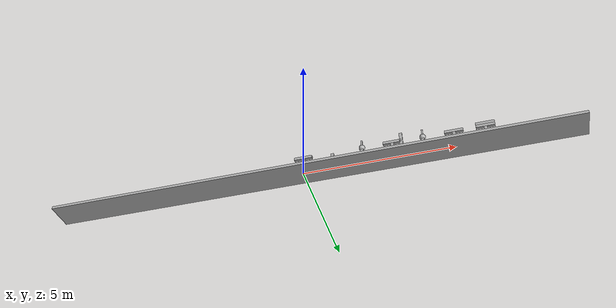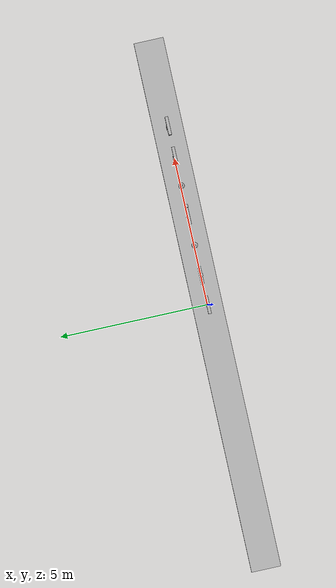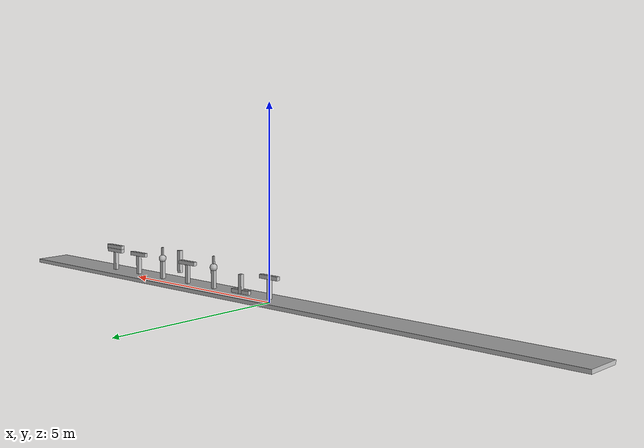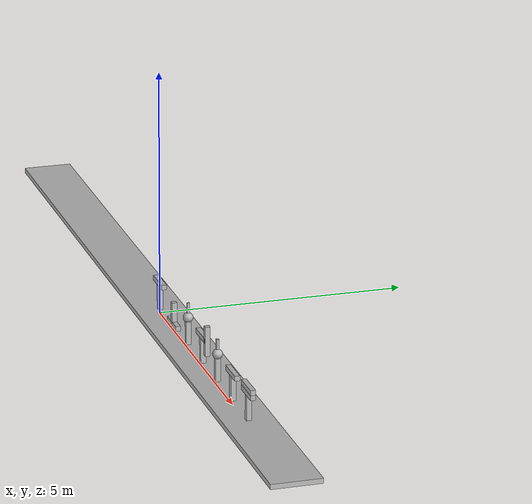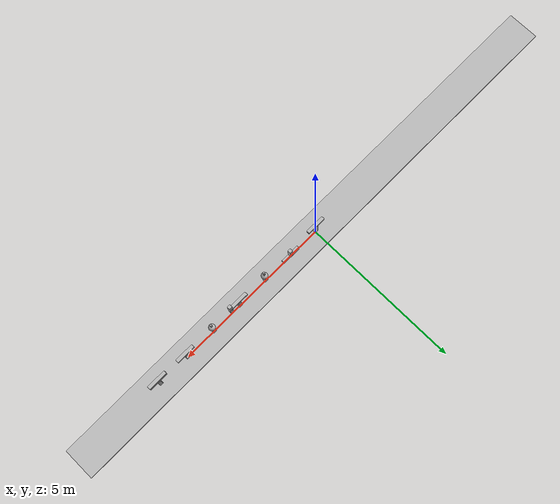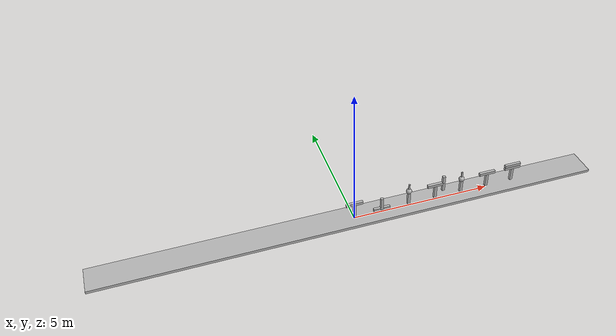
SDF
<?xml version="1.0" ?>
<sdf version="1.6">
  <model name="SimBox">
    <static>false</static>

<!-- base -->
    <link name="base">
      <pose>0 0 0.05 0 0 0</pose>

      <collision name="collision">
        <geometry>
          <box>
            <size>14 1 0.1</size>
          </box>
        </geometry>
      </collision>
      <visual name="visual">
        <geometry>
          <box>
            <size>18 1 0.1</size>
          </box>
        </geometry>
      </visual>
    </link>

<!-- revolute -->

    <link name="base_link_1_revolute">
      <pose>0 0 0.3 0 0 0</pose>

      <collision name="collision">
        <geometry>
          <box>
            <size>0.1 0.1 0.6</size>
          </box>
        </geometry>
      </collision>
      <visual name="visual">
        <geometry>
          <box>
            <size>0.1 0.1 0.6</size>
          </box>
        </geometry>
      </visual>
    </link>

    <link name="top_link_1_revolute">
      <pose>0 0 0.65 0 0 0</pose>

      <collision name="collision">
        <geometry>
          <box>
            <size>0.6 0.1 0.1</size>
          </box>
        </geometry>
      </collision>
      <visual name="visual">
        <geometry>
          <box>
            <size>0.6 0.1 0.1</size>
          </box>
        </geometry>
      </visual>
    </link>

     <joint name = "base_fixed_1" type="fixed">
      <parent>base</parent>
      <child>base_link_1_revolute</child>
    </joint>

    <joint name = "joint_1_revolute" type="revolute">
      <parent>base_link_1_revolute</parent>
      <child>top_link_1_revolute</child>
      <axis>
        <xyz>0 0 1</xyz>
      </axis>
    </joint>

    <!-- prismatic box -->

    <link name="base_link_2_prismatic">
      <pose>1 0 0.3 0 0 0</pose>

      <collision name="collision">
        <geometry>
          <box>
            <size>0.1 0.1 0.6</size>
          </box>
        </geometry>
      </collision>
      <visual name="visual">
        <geometry>
          <box>
            <size>0.1 0.1 0.6</size>
          </box>
        </geometry>
      </visual>
    </link>

    <link name="link_2_prismatic">
      <pose>1 0 0.15 0 0 0</pose>

      <collision name="collision">
        <geometry>
          <box>
            <size>0.6 0.1 0.1</size>
          </box>
        </geometry>
      </collision>
      <visual name="visual">
        <geometry>
          <box>
            <size>0.6 0.1 0.1</size>
          </box>
        </geometry>
      </visual>
    </link>

    <joint name = "base_fixed_2" type="fixed">
      <parent>base</parent>
      <child>base_link_2_prismatic</child>
    </joint>

    <joint name = "joint_2_prismatic" type="prismatic">
      <parent>base_link_2_prismatic</parent>
      <child>link_2_prismatic</child>
      <axis>
        <limit>
          <lower>0</lower>
          <upper>0.5</upper>
        </limit>
        <xyz>0 0 1</xyz>

      </axis>

    </joint>

        <!-- ball joint box -->

    <link name="base_link_3_ball">
      <pose>2 0 0.3 0 0 0</pose>

      <collision name="collision">
        <geometry>
          <box>
            <size>0.1 0.1 0.6</size>
          </box>
        </geometry>
      </collision>
      <visual name="visual">
        <geometry>
          <box>
            <size>0.1 0.1 0.6</size>
          </box>
        </geometry>
      </visual>
    </link>

    <link name="link_3_ball">
      <pose>2 0 0.65 0 0 0</pose>

      <collision name="collision">
        <geometry>
          <sphere>
            <radius> 0.1 </radius>
          </sphere>
        </geometry>
      </collision>
      <visual name="visual">
        <geometry>
          <sphere>
            <radius> 0.1 </radius>
          </sphere>
        </geometry>
      </visual>
    </link>

    <link name="top_link_3_ball">
      <pose>2 0 0.8 0 0 0</pose>

      <collision name="collision">
        <geometry>
          <box>
            <size>0.05 0.05 0.3</size>
          </box>
        </geometry>
      </collision>
      <visual name="visual">
        <geometry>
          <box>
            <size>0.05 0.05 0.3</size>
          </box>
        </geometry>
      </visual>
    </link>

    <joint name = "base_fixed_3" type="fixed">
      <parent>base</parent>
      <child>base_link_3_ball</child>
    </joint>

    <joint name = "joint_3_ball" type="ball">
      <parent>base_link_3_ball</parent>
      <child>link_3_ball</child>
    </joint>

    <joint name = "top_fixed_3" type="fixed">
      <parent>link_3_ball</parent>
      <child>top_link_3_ball</child>
    </joint>

    <!-- screw joint-->

    <link name="base_link_4_screw">
      <pose>3 0 0.3 0 0 0</pose>

      <collision name="collision">
        <geometry>
           <box>
            <size>0.1 0.1 0.6</size>
          </box>
        </geometry>
      </collision>
      <visual name="visual">
        <geometry>
          <box>
            <size>0.1 0.1 0.6</size>
          </box>
        </geometry>
      </visual>
    </link>

    <link name="top_link_4_screw">
      <pose>3 0 0.65 0 0 0</pose>

      <collision name="collision">
        <geometry>
           <box>
            <size>0.6 0.1 0.1</size>
          </box>
        </geometry>
      </collision>
      <visual name="visual">
        <geometry>
          <box>
            <size>0.6 0.1 0.1</size>
          </box>
        </geometry>
      </visual>
    </link>

    <link name="link_4_screw">
      <pose>3.3 0 0.65 0 0 0</pose>

      <collision name="collision">
        <geometry>
          <box>
            <size>0.1 0.1 0.6</size>
          </box>
        </geometry>
      </collision>
      <visual name="visual">
        <geometry>
          <box>
            <size>0.1 0.1 0.6</size>
          </box>
        </geometry>
      </visual>
    </link>

    <joint name = "base_fixed_4" type="fixed">
      <parent>base</parent>
      <child>base_link_4_screw</child>
    </joint>

    <joint name = "top_fixed_4" type="fixed">
      <parent>base_link_4_screw</parent>
      <child>top_link_4_screw</child>
    </joint>

    <joint name = "joint_4_screw" type="screw">
      <parent>top_link_4_screw</parent>
      <child>link_4_screw</child>
      <thread_pitch>10</thread_pitch>
      <axis>
        <limit>
          <upper>6.28</upper>
          <lower>0</lower>
        </limit>
        <xyz> 1 0 0</xyz>
      </axis>
    </joint>

    <!-- universal joint-->
 <link name="base_link_5_universal">
      <pose>4 0 0.3 0 0 0</pose>

      <collision name="collision">
        <geometry>
          <box>
            <size>0.1 0.1 0.6</size>
          </box>
        </geometry>
      </collision>
      <visual name="visual">
        <geometry>
          <box>
            <size>0.1 0.1 0.6</size>
          </box>
        </geometry>
      </visual>
    </link>

    <link name="link_5_universal">
      <pose>4 0 0.65 0 0 0</pose>

      <collision name="collision">
        <geometry>
          <sphere>
            <radius> 0.1 </radius>
          </sphere>
        </geometry>
      </collision>
      <visual name="visual">
        <geometry>
          <sphere>
            <radius> 0.1 </radius>
          </sphere>
        </geometry>
      </visual>
    </link>

    <link name="top_link_5_universal">
      <pose>4 0 0.8 0 0 0</pose>

      <collision name="collision">
        <geometry>
          <box>
            <size>0.05 0.05 0.3</size>
          </box>
        </geometry>
      </collision>
      <visual name="visual">
        <geometry>
          <box>
            <size>0.05 0.05 0.3</size>
          </box>
        </geometry>
      </visual>
    </link>

    <joint name = "base_fixed_5" type="fixed">
      <parent>base</parent>
      <child>base_link_5_universal</child>
    </joint>

    <joint name = "joint_5_universal" type="universal">
      <parent>base_link_5_universal</parent>
      <child>link_5_universal</child>

      <axis>
        <xyz>1 0 0</xyz>
      </axis>
      <axis2>
        <xyz>0 1 0</xyz>
      </axis2>
    </joint>

    <joint name = "top_fixed_5" type="fixed">
      <parent>link_5_universal</parent>
      <child>top_link_5_universal</child>
    </joint>

<!-- revolute2 -->

    <link name="base_link_6_revolute2">
      <pose>5 0 0.3 0 0 0</pose>

      <collision name="collision">
        <geometry>
          <box>
            <size>0.1 0.1 0.6</size>
          </box>
        </geometry>
      </collision>
      <visual name="visual">
        <geometry>
          <box>
            <size>0.1 0.1 0.6</size>
          </box>
        </geometry>
      </visual>
    </link>

    <link name="top_link_6_revolute2">
      <pose>5 0 0.65 0 0 0</pose>

      <collision name="collision">
        <geometry>
          <box>
            <size>0.6 0.1 0.1</size>
          </box>
        </geometry>
      </collision>
      <visual name="visual">
        <geometry>
          <box>
            <size>0.6 0.1 0.1</size>
          </box>
        </geometry>
      </visual>
    </link>

     <joint name = "base_fixed_6" type="fixed">
      <parent>base</parent>
      <child>base_link_6_revolute2</child>
    </joint>

    <joint name = "joint_6_revolute2" type="revolute2">
      <parent>base_link_6_revolute2</parent>
      <child>top_link_6_revolute2</child>
      <axis>
        <xyz>0 0 1</xyz>
      </axis>
      <axis2>
        <xyz>1 0 0</xyz>
      </axis2>
    </joint>

<!-- gearbox -->

    <link name="base_link_7_gearbox">
      <pose>6 0 0.3 0 0 0</pose>

      <collision name="collision">
        <geometry>
          <box>
            <size>0.1 0.1 0.6</size>
          </box>
        </geometry>
      </collision>
      <visual name="visual">
        <geometry>
          <box>
            <size>0.1 0.1 0.6</size>
          </box>
        </geometry>
      </visual>
    </link>

    <link name="top_link_lower_7_gearbox">
      <pose>6 0 0.65 0 0 0</pose>

      <collision name="collision">
        <geometry>
          <box>
            <size>0.6 0.1 0.1</size>
          </box>
        </geometry>
      </collision>
      <visual name="visual">
        <geometry>
          <box>
            <size>0.6 0.1 0.1</size>
          </box>
        </geometry>
      </visual>
    </link>

    <link name="top_link_upper_7_gearbox">
      <pose>6 0 0.75 0 0 0</pose>

      <collision name="collision">
        <geometry>
          <box>
            <size>0.6 0.1 0.1</size>
          </box>
        </geometry>
      </collision>
      <visual name="visual">
        <geometry>
          <box>
            <size>0.6 0.1 0.1</size>
          </box>
        </geometry>
      </visual>
    </link>

     <joint name = "base_fixed_7" type="fixed">
      <parent>base</parent>
      <child>base_link_7_gearbox</child>
    </joint>

    <joint name = "joint_7_1_revolute_for_gearbox" type="revolute">
      <parent>base_link_7_gearbox</parent>
      <child>top_link_lower_7_gearbox</child>
      <axis>
        <xyz>0 0 1</xyz>
      </axis>
    </joint>

    <joint name = "joint_7_2_revolute_for_gearbox" type="revolute">
      <parent>top_link_lower_7_gearbox</parent>
      <child>top_link_upper_7_gearbox</child>
      <axis>
        <xyz>0 0 1</xyz>
      </axis>
    </joint>

    <joint name = "joint_7_gearbox" type="gearbox">
      <parent>base_link_7_gearbox</parent>
      <child>top_link_upper_7_gearbox</child>
      <gearbox_ratio>2</gearbox_ratio>
      <gearbox_reference_body>top_link_lower_7_gearbox</gearbox_reference_body>
      <axis>
        <use_parent_model_frame>true</use_parent_model_frame>
        <xyz>0 0 1</xyz>
      </axis>
      <axis2>
        <use_parent_model_frame>true</use_parent_model_frame>
        <xyz>0 0 1</xyz>
      </axis2>

    </joint>
  </model>
</sdf>
